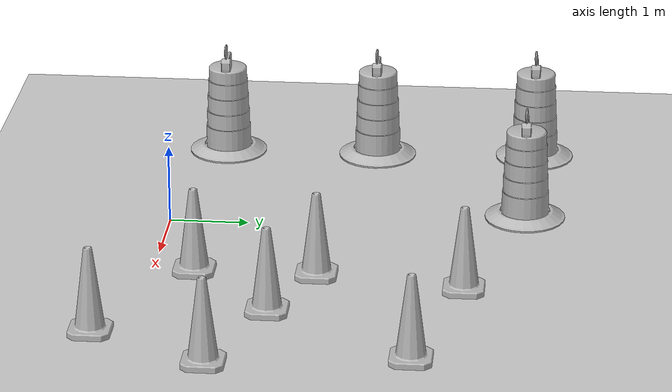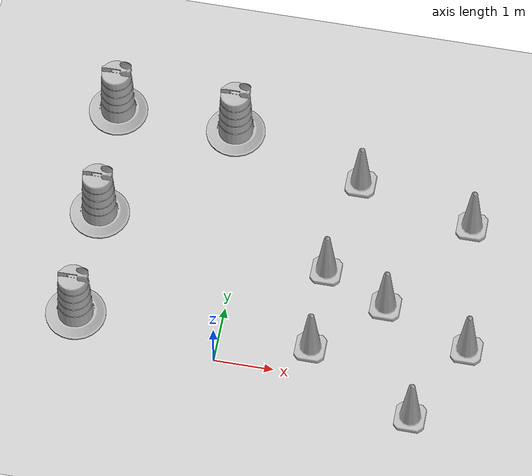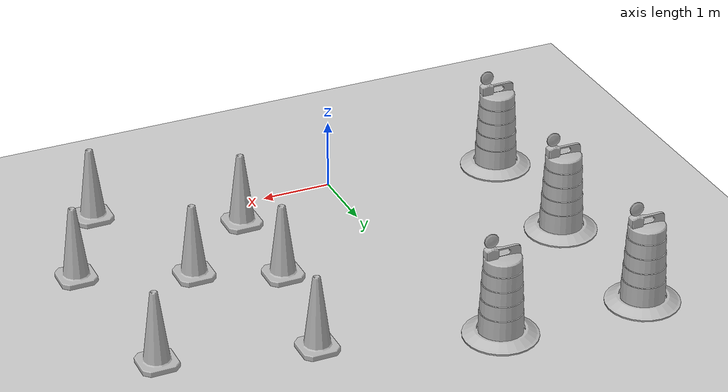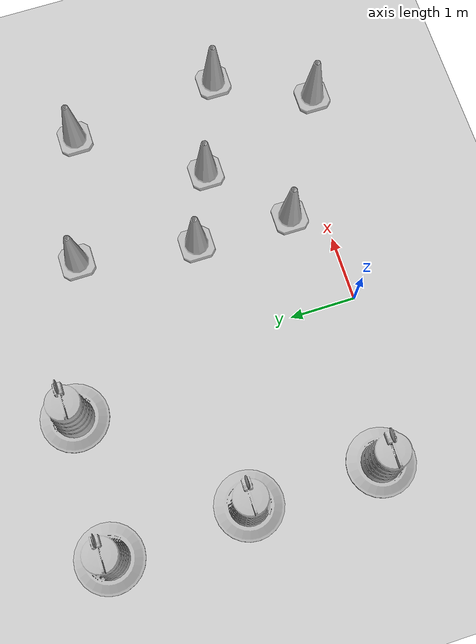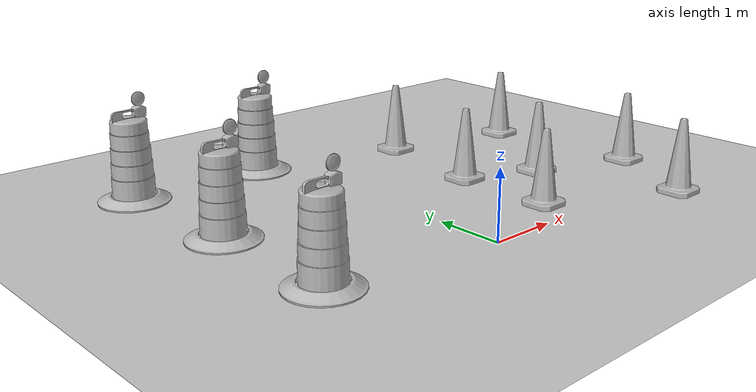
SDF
<sdf version="1.7">
 <world name="default">
  <light name="sun" type="directional">
   <pose>0 0 10 0 -0 0</pose>
   <diffuse>0.8 0.8 0.8 1</diffuse>
   <specular>0.2 0.2 0.2 1</specular>
   <attenuation>
    <range>1000</range>
    <constant>0.9</constant>
    <linear>0.01</linear>
    <quadratic>0.001</quadratic>
   </attenuation>
   <direction>-0.5 0.1 -0.9</direction>
   <spot><inner_angle>0</inner_angle><outer_angle>0</outer_angle><falloff>0</falloff></spot>
  </light>
  <model name="ground_plane">
   <static>1</static>
   <link name="link">
    <collision name="collision">
     <geometry><plane><normal>0 0 1</normal><size>100 100</size></plane></geometry>
     <surface>
      <contact><collide_bitmask>65535</collide_bitmask></contact>
      <friction><ode><mu>100</mu><mu2>50</mu2></ode></friction>
     </surface>
    </collision>
    <visual name="visual">
     <cast_shadows>0</cast_shadows>
     <geometry><plane><normal>0 0 1</normal><size>100 100</size></plane></geometry>
     <material>
      <script><uri>file://media/materials/scripts/gazebo.material</uri><name>Gazebo/Grey</name></script>
     </material>
    </visual>
   </link>
  </model>
  <gravity>0 0 -9.8</gravity>
  <magnetic_field>6e-06 2.3e-05 -4.2e-05</magnetic_field>
  <atmosphere type="adiabatic"/>
  <physics type="ode">
   <max_step_size>0.001</max_step_size>
   <real_time_factor>1</real_time_factor>
   <real_time_update_rate>1000</real_time_update_rate>
  </physics>
  <scene><ambient>0.4 0.4 0.4 1</ambient><background>0.7 0.7 0.7 1</background><shadows>1</shadows></scene>
  <spherical_coordinates>
   <surface_model>EARTH_WGS84</surface_model>
   <latitude_deg>0</latitude_deg>
   <longitude_deg>0</longitude_deg>
   <elevation>0</elevation>
   <heading_deg>0</heading_deg>
  </spherical_coordinates>
  <model name="Construction Barrel">
   <link name="link">
    <inertial>
     <pose>0 0 0.4 0 -0 0</pose>
     <mass>500</mass>
     <inertia><ixx>51.2096</ixx><iyy>51.2096</iyy><izz>25</izz><ixy>0</ixy><ixz>0</ixz><iyz>0</iyz></inertia>
    </inertial>
    <collision name="collision">
     <geometry><mesh><uri>model://construction_barrel/meshes/construction_barrel.dae</uri></mesh></geometry>
    </collision>
    <visual name="visual">
     <geometry><mesh><uri>model://construction_barrel/meshes/construction_barrel.dae</uri></mesh></geometry>
    </visual>
   </link>
   <pose>-2.43954 0.459706 0 0 0 -2e-05</pose>
  </model>
  <model name="Construction Barrel_clone">
   <link name="link">
    <inertial>
     <pose>0 0 0.4 0 -0 0</pose>
     <mass>500</mass>
     <inertia><ixx>51.2096</ixx><iyy>51.2096</iyy><izz>25</izz><ixy>0</ixy><ixz>0</ixz><iyz>0</iyz></inertia>
    </inertial>
    <collision name="collision">
     <geometry><mesh><uri>model://construction_barrel/meshes/construction_barrel.dae</uri></mesh></geometry>
    </collision>
    <visual name="visual">
     <geometry><mesh><uri>model://construction_barrel/meshes/construction_barrel.dae</uri></mesh></geometry>
    </visual>
   </link>
   <pose>-2.44727 2.45589 0 0 0 -1.7e-05</pose>
  </model>
  <model name="Construction Barrel_clone_0">
   <link name="link">
    <inertial>
     <pose>0 0 0.4 0 -0 0</pose>
     <mass>500</mass>
     <inertia><ixx>51.2096</ixx><iyy>51.2096</iyy><izz>25</izz><ixy>0</ixy><ixz>0</ixz><iyz>0</iyz></inertia>
    </inertial>
    <collision name="collision">
     <geometry><mesh><uri>model://construction_barrel/meshes/construction_barrel.dae</uri></mesh></geometry>
    </collision>
    <visual name="visual">
     <geometry><mesh><uri>model://construction_barrel/meshes/construction_barrel.dae</uri></mesh></geometry>
    </visual>
   </link>
   <pose>-2.5556 4.54056 -1e-06 2e-06 -1e-06 -1.3e-05</pose>
  </model>
  <model name="Construction Barrel_clone_1">
   <link name="link">
    <inertial>
     <pose>0 0 0.4 0 -0 0</pose>
     <mass>500</mass>
     <inertia><ixx>51.2096</ixx><iyy>51.2096</iyy><izz>25</izz><ixy>0</ixy><ixz>0</ixz><iyz>0</iyz></inertia>
    </inertial>
    <collision name="collision">
     <geometry><mesh><uri>model://construction_barrel/meshes/construction_barrel.dae</uri></mesh></geometry>
    </collision>
    <visual name="visual">
     <geometry><mesh><uri>model://construction_barrel/meshes/construction_barrel.dae</uri></mesh></geometry>
    </visual>
   </link>
   <pose>-0.486814 4.48401 -1e-06 2e-06 -1e-06 -1.3e-05</pose>
  </model>
  <model name="Construction Cone">
   <link name="link">
    <collision name="collision">
     <geometry>
      <mesh><scale>10 10 10</scale><uri>model://construction_cone/meshes/construction_cone.dae</uri></mesh>
     </geometry>
    </collision>
    <visual name="visual">
     <geometry>
      <mesh><scale>10 10 10</scale><uri>model://construction_cone/meshes/construction_cone.dae</uri></mesh>
     </geometry>
    </visual>
    <inertial>
     <inertia><ixx>1</ixx><ixy>0</ixy><ixz>0</ixz><iyy>1</iyy><iyz>0</iyz><izz>1</izz></inertia>
     <mass>1</mass>
    </inertial>
   </link>
   <pose>1.53048 0.505532 -1e-05 -0 -0 -0</pose>
  </model>
  <model name="Construction Cone_clone">
   <link name="link">
    <collision name="collision">
     <geometry>
      <mesh><scale>10 10 10</scale><uri>model://construction_cone/meshes/construction_cone.dae</uri></mesh>
     </geometry>
    </collision>
    <visual name="visual">
     <geometry>
      <mesh><scale>10 10 10</scale><uri>model://construction_cone/meshes/construction_cone.dae</uri></mesh>
     </geometry>
    </visual>
    <inertial>
     <inertia><ixx>1</ixx><ixy>0</ixy><ixz>0</ixz><iyy>1</iyy><iyz>0</iyz><izz>1</izz></inertia>
     <mass>1</mass>
    </inertial>
   </link>
   <pose>1.53249 2.00868 -1e-05 -0 -0 -0</pose>
  </model>
  <model name="Construction Cone_clone_0">
   <link name="link">
    <collision name="collision">
     <geometry>
      <mesh><scale>10 10 10</scale><uri>model://construction_cone/meshes/construction_cone.dae</uri></mesh>
     </geometry>
    </collision>
    <visual name="visual">
     <geometry>
      <mesh><scale>10 10 10</scale><uri>model://construction_cone/meshes/construction_cone.dae</uri></mesh>
     </geometry>
    </visual>
    <inertial>
     <inertia><ixx>1</ixx><ixy>0</ixy><ixz>0</ixz><iyy>1</iyy><iyz>0</iyz><izz>1</izz></inertia>
     <mass>1</mass>
    </inertial>
   </link>
   <pose>2.62109 1.51864 0 -0 -0 -0</pose>
  </model>
  <model name="Construction Cone_clone_1">
   <link name="link">
    <collision name="collision">
     <geometry>
      <mesh><scale>10 10 10</scale><uri>model://construction_cone/meshes/construction_cone.dae</uri></mesh>
     </geometry>
    </collision>
    <visual name="visual">
     <geometry>
      <mesh><scale>10 10 10</scale><uri>model://construction_cone/meshes/construction_cone.dae</uri></mesh>
     </geometry>
    </visual>
    <inertial>
     <inertia><ixx>1</ixx><ixy>0</ixy><ixz>0</ixz><iyy>1</iyy><iyz>0</iyz><izz>1</izz></inertia>
     <mass>1</mass>
    </inertial>
   </link>
   <pose>4.08834 0.9386 -4e-06 4e-06 -1e-06 0</pose>
  </model>
  <model name="Construction Cone_clone_2">
   <link name="link">
    <collision name="collision">
     <geometry>
      <mesh><scale>10 10 10</scale><uri>model://construction_cone/meshes/construction_cone.dae</uri></mesh>
     </geometry>
    </collision>
    <visual name="visual">
     <geometry>
      <mesh><scale>10 10 10</scale><uri>model://construction_cone/meshes/construction_cone.dae</uri></mesh>
     </geometry>
    </visual>
    <inertial>
     <inertia><ixx>1</ixx><ixy>0</ixy><ixz>0</ixz><iyy>1</iyy><iyz>0</iyz><izz>1</izz></inertia>
     <mass>1</mass>
    </inertial>
   </link>
   <pose>3.80131 3.31433 -9e-06 0 -0 0</pose>
  </model>
  <model name="Construction Cone_clone_3">
   <link name="link">
    <collision name="collision">
     <geometry>
      <mesh><scale>10 10 10</scale><uri>model://construction_cone/meshes/construction_cone.dae</uri></mesh>
     </geometry>
    </collision>
    <visual name="visual">
     <geometry>
      <mesh><scale>10 10 10</scale><uri>model://construction_cone/meshes/construction_cone.dae</uri></mesh>
     </geometry>
    </visual>
    <inertial>
     <inertia><ixx>1</ixx><ixy>0</ixy><ixz>0</ixz><iyy>1</iyy><iyz>0</iyz><izz>1</izz></inertia>
     <mass>1</mass>
    </inertial>
   </link>
   <pose>1.80696 3.82279 0 -0 -0 -0</pose>
  </model>
  <model name="Construction Cone_clone_4">
   <link name="link">
    <collision name="collision">
     <geometry>
      <mesh><scale>10 10 10</scale><uri>model://construction_cone/meshes/construction_cone.dae</uri></mesh>
     </geometry>
    </collision>
    <visual name="visual">
     <geometry>
      <mesh><scale>10 10 10</scale><uri>model://construction_cone/meshes/construction_cone.dae</uri></mesh>
     </geometry>
    </visual>
    <inertial>
     <inertia><ixx>1</ixx><ixy>0</ixy><ixz>0</ixz><iyy>1</iyy><iyz>0</iyz><izz>1</izz></inertia>
     <mass>1</mass>
    </inertial>
   </link>
   <pose>3.36988 -0.489911 -0 0 -1e-06 0</pose>
  </model>
 </world>
</sdf>
